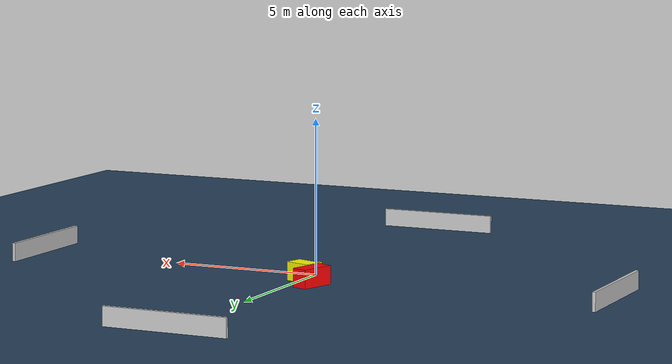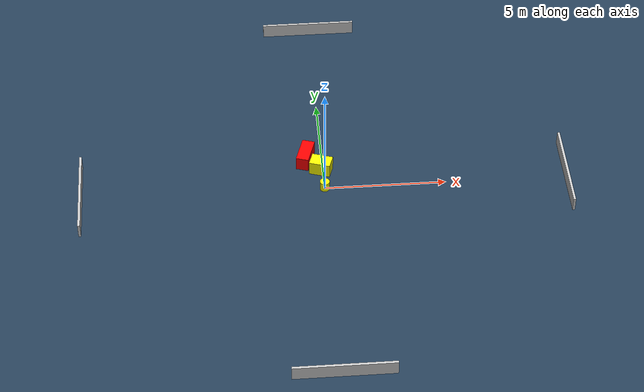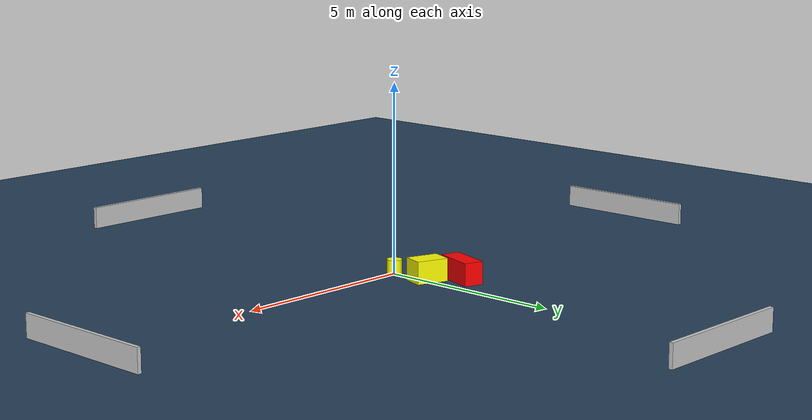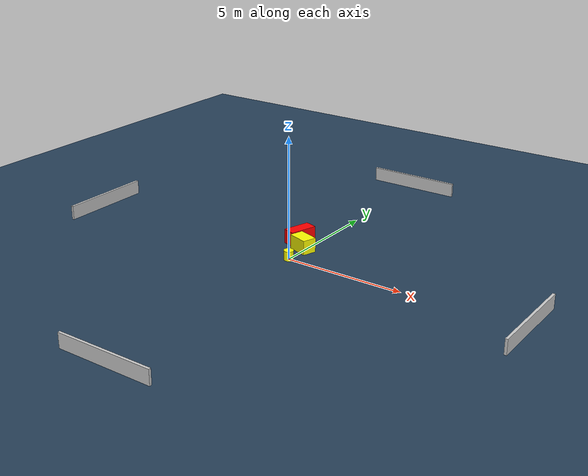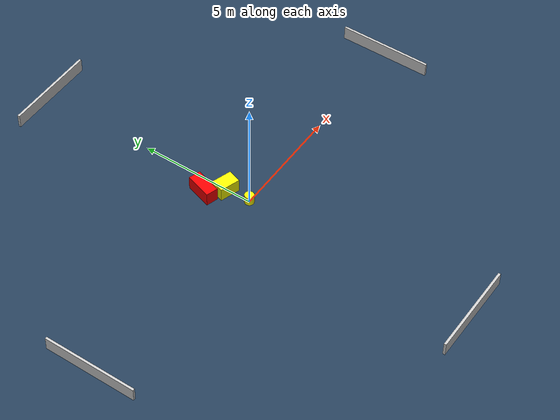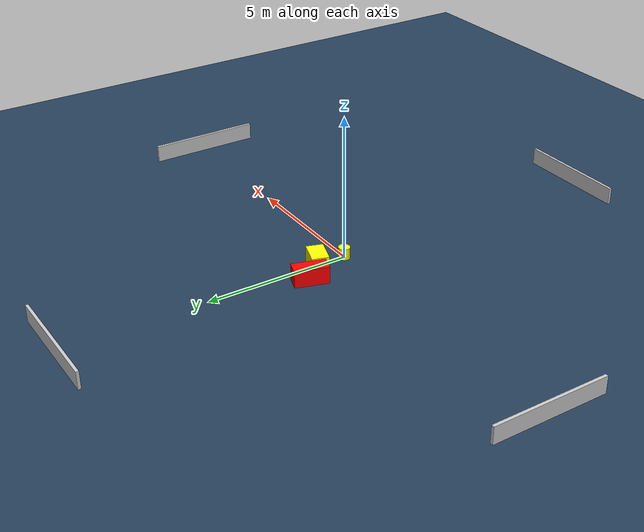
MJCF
<?xml version="1.0" ?>
<mujoco model="generated_environment">
  <option timestep="0.01" integrator="RK4" cone="elliptic"/>
  <default>
    <geom density="1"/>
  </default>
  <asset>
    <texture builtin="gradient" height="3072" name="skybox" rgb1="0.3 0.5 0.7" rgb2="0 0 0" type="skybox" width="512"/>
    <texture builtin="checker" height="300" name="groundplane" rgb1="0.2 0.3 0.4" rgb2="0.1 0.2 0.3" type="2d" width="300"/>
    <material name="groundplane" reflectance="0.2" texrepeat="5 5" texture="groundplane"/>
  </asset>
  <worldbody>
    <light dir="0 0 -1" directional="true" pos="0 0 1.5"/>
    <geom condim="3" friction="0.5 0.005 0.001" material="groundplane" name="floor" pos="0 0 0" size="0 0 0.05" type="plane"/>
    <body name="walls">
      <geom name="wall_1" condim="4" pos="-10.0 0.0 0.3" rgba="0.800000011920929 0.800000011920929 0.800000011920929 1.0" size="0.05 2.0 0.3" type="box"/>
      <geom name="wall_2" condim="4" pos="10.0 0.0 0.3" rgba="0.800000011920929 0.800000011920929 0.800000011920929 1.0" size="0.05 2.0 0.3" type="box"/>
      <geom name="wall_3" condim="4" pos="0.0 -10.0 0.3" rgba="0.800000011920929 0.800000011920929 0.800000011920929 1.0" size="2.0 0.05 0.3" type="box"/>
      <geom name="wall_4" condim="4" pos="0.0 10.0 0.3" rgba="0.800000011920929 0.800000011920929 0.800000011920929 1.0" size="2.0 0.05 0.3" type="box"/>
    </body>
    <body name="robot">
      <joint name="joint_x" type="slide" pos="0 0 0" axis="1 0 0"/>
      <joint name="joint_y" type="slide" pos="0 0 0" axis="0 1 0"/>
      <geom name="robot" type="cylinder" pos="0.0 0.0 0.2" size="0.2 0.2 0.0" mass="5.0" friction="1.0 0.005 0.0001" condim="4" rgba="1.0 1.0 0.0 1.0"/>
    </body>
    <body name="obstacle_1_movable">
      <geom name="obstacle_1_movable" condim="4" pos="-0.07568134123728693 1.0775789758964356 0.3" euler="0 0 341.9767556715152" friction="0.0 0.005 0.001" rgba="1.0 1.0 0.0 1.0" size="0.4368407710407035 0.2923051028487955 0.3" type="box" mass="0.1"/>
      <joint type="free"/>
    </body>
    <body name="obstacle_2_static">
      <geom name="obstacle_2_static" condim="4" pos="-0.6774758207567687 1.727868528094493 0.3" euler="0 0 252.54942857155442" friction="0.0 0.005 0.001" rgba="1.0 0.0 0.0 1.0" size="0.5779160549272683 0.26070725538969003 0.3" type="box"/>
    </body>
  </worldbody>
  <actuator>
    <motor name="actuator_x" joint="joint_x" gear="1" ctrlrange="-1 1"/>
    <motor name="actuator_y" joint="joint_y" gear="1" ctrlrange="-1 1"/>
  </actuator>
</mujoco>
